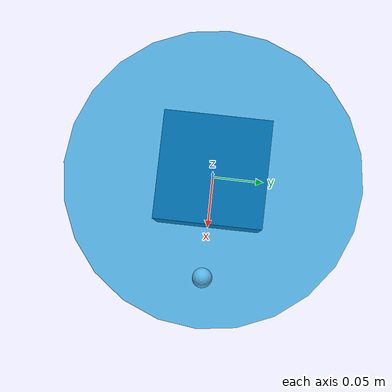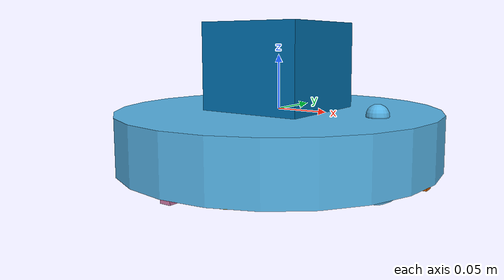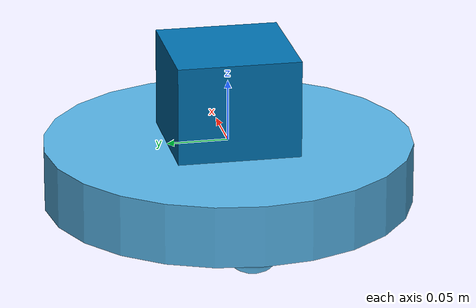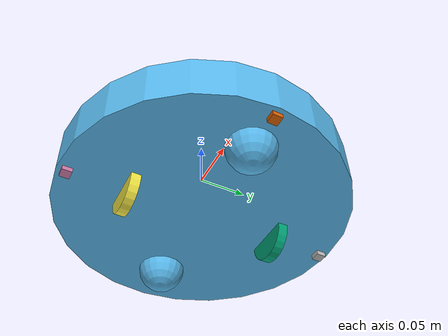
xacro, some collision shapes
<?xml version='1.0'?>

<robot name="fncd_bot" xmlns:xacro="http://www.ros.org/wiki/xacro">
 <xacro:include filename="$(find fall_and_collision_detection)/urdf/bot.gazebo" />
 <link name="base_footprint"></link>

 <joint name="base_footprint_joint" type="fixed">
<origin xyz="0 0 0" rpy="0 0 0" />
<parent link="base_footprint"/>
<child link="base_link" />
</joint>

<link name='base_link'>
<pose>0 0 0.1 0 0 0</pose>

 <inertial>
<mass value="15.0"/>
<origin xyz="0 0 0" rpy="0 0 0"/>
<inertia
ixx="0.1" ixy="0" ixz="0"
iyy="0.1" iyz="0"
izz="0.1"
/>
</inertial>

<collision name='base_collision'>
<origin xyz="0 0 -0.025" rpy="0 0 0"/>
<geometry>
<cylinder radius="0.15" length=".05"/>
</geometry>
</collision>

 <visual name='base_link_visual'>
<origin xyz="0 0 -0.025" rpy="0 0 0"/>
<geometry>
<cylinder radius="0.15" length=".05"/>
 <!--mesh filename = "package://urdf_examples/meshes/wheel.dae"/-->
</geometry>
</visual>

 <collision name='caster_collision'>
<origin xyz="-0.1 0 -0.05" rpy="0 0 0"/>
<geometry>
<sphere radius="0.0245"/>
</geometry>
</collision>

 <visual name='caster_visual'>
<origin xyz="-0.1 0 -0.05" rpy="0 0 0"/>
<geometry>
<sphere radius="0.0245"/>
 <!--mesh filename = "package://urdf_examples/meshes/wheel.dae"/-->
</geometry>
</visual>

<collision name='caster2_collision'>
  <origin xyz="0.1 0 -0.05" rpy="0 0 0"/>
  <geometry>
  <sphere radius="0.0245"/>
  </geometry>
  </collision>

   <visual name='caster2_visual'>
  <origin xyz="0.1 0 -0.05" rpy="0 0 0"/>
  <geometry>
  <sphere radius="0.0245"/>
   <!--mesh filename = "package://urdf_examples/meshes/wheel.dae"/-->
  </geometry>
  </visual>

  <collision name='indicator_collision'>
    <origin xyz="0.1 0 0.001" rpy="0 0 0"/>
    <geometry>
    <sphere radius="0.01"/>
    </geometry>
    </collision>

     <visual name='indicator_visual'>
    <origin xyz="0.1 0 0.001" rpy="0 0 0"/>
    <geometry>
    <sphere radius="0.01"/>
     <!--mesh filename = "package://urdf_examples/meshes/wheel.dae"/-->
    </geometry>
    </visual>

 </link>

 <joint type="continuous" name="left_wheel_joint">
    <origin xyz="0.00 0.08 -0.05" rpy="0 0 0"/>
    <child link="left_wheel"/>
    <parent link="base_link"/>
    <axis xyz="0 1 0" rpy="0 0 0"/>
    <limit effort="10000" velocity="1000"/>
    <dynamics damping="1.0" friction="1.0"/>
  </joint>

  <link name='left_wheel'>
    <inertial>
      <mass value="0.1"/>
      <origin xyz="0 0 0" rpy="0 1.5707 1.5707"/>
      <inertia
          ixx="0.1" ixy="0" ixz="0"
          iyy="0.1" iyz="0"
          izz="0.1"
      />
    </inertial>

    <collision name='collision'>
      <origin xyz="0 0 0" rpy="0 1.5707 1.5707"/>
      <geometry>
        <cylinder radius=".025" length=".01"/>
      </geometry>
    </collision>

    <visual name='left_wheel_visual'>
      <origin xyz="0 0 0" rpy="0 1.5707 1.5707"/>
      <geometry>
        <cylinder radius=".025" length=".01"/>
         <!--mesh filename = "package://urdf_examples/meshes/wheel.dae"/-->
      </geometry>
    </visual>
  </link>

  <joint type="continuous" name="right_wheel_joint">
    <origin xyz="0.00 -0.08 -0.05" rpy="0 0 0"/>
    <child link="right_wheel"/>
    <parent link="base_link"/>
    <axis xyz="0 1 0" rpy="0 0 0"/>
    <limit effort="10000" velocity="1000"/>
    <dynamics damping="1.0" friction="1.0"/>
  </joint>

  <link name='right_wheel'>
    <inertial>
      <mass value="5.0"/>
      <origin xyz="0 0 0" rpy="0 1.5707 1.5707"/>
      <inertia
          ixx="0.1" ixy="0" ixz="0"
          iyy="0.1" iyz="0"
          izz="0.1"
      />
    </inertial>

    <collision name='collision'>
      <origin xyz="0 0 0" rpy="0 1.5707 1.5707"/>
      <geometry>
        <cylinder radius=".025" length=".01"/>
      </geometry>
    </collision>

    <visual name='right_wheel_visual'>
      <origin xyz="0 0 0" rpy="0 1.5707 1.5707"/>
      <geometry>
        <cylinder radius=".025" length=".01"/>
        <!--mesh filename = "package://urdf_examples/meshes/wheel.dae"/-->
    </geometry>
    </visual>
  </link>

  <!-- Lidar -->
  <joint type="fixed" name="scan_joint">
    <origin xyz="0.0 0 0.03" rpy="0 0 0"/>
    <child link="scan_link"/>
    <parent link="base_link"/>
    <axis xyz="0 1 0" rpy="0 0 0"/>
  </joint>

  <link name='scan_link'>
    <inertial>
      <mass value="1e-5"/>
      <origin xyz="0 0 0" rpy="0 0 0"/>
      <inertia
          ixx="1e-6" ixy="0" ixz="0"
          iyy="1e-6" iyz="0"
          izz="1e-6"
      />
    </inertial>

    <collision name='collision'>
      <origin xyz="0 0 0" rpy="0 0 0"/>
      <geometry>
        <box size=".1 .1 .1"/>
      </geometry>
    </collision>

    <visual name='scan_link_visual'>
      <origin xyz="0 0 0" rpy="0 0 0"/>
      <geometry>
        <!--  TODO : use own mesh instead-->
        <mesh filename = "package://bme_gazebo_sensors/meshes/lidar.dae"/>
      </geometry>
    </visual>

  </link>

  <!-- IR sensor 1 -->
  <joint type="fixed" name="ir_front_joint">
    <origin xyz="0.14 0 -0.05" rpy="0 1.56 0"/>
    <child link="base_ir_front"/>
    <parent link="base_link"/>
    <axis xyz="1 0 0" rpy="0 0 0"/>
  </joint>

  <link name="base_ir_front">
    <collision>
      <origin xyz="0 0 0" rpy="0 0 0"/>
      <geometry>
        <box size="0.01 0.01 0.01"/>
      </geometry>
    </collision>
    <visual>
      <origin xyz="0 0 0" rpy="0 0 0"/>
      <geometry>
        <box size="0.01 0.01 0.01"/>
      </geometry>
    </visual>
    <inertial>
      <mass value="1e-5" />
      <origin xyz="0 0 0" rpy="0 0 0"/>
      <inertia ixx="1e-6" ixy="0" ixz="0" iyy="1e-6" iyz="0"      izz="1e-6" />
    </inertial>
  </link>

  <!-- IR sensor 2 -->
  <joint type="fixed" name="ir_left_joint">
    <origin xyz="0.0 -0.14 -0.05" rpy="0 1.56 0"/>
    <child link="base_ir_left"/>
    <parent link="base_link"/>
    <axis xyz="1 0 0" rpy="0 0 0"/>
  </joint>

  <link name="base_ir_left">
    <collision>
      <origin xyz="0 0 0" rpy="0 0 0"/>
      <geometry>
        <box size="0.01 0.01 0.01"/>
      </geometry>
    </collision>
    <visual>
      <origin xyz="0 0 0" rpy="0 0 0"/>
      <geometry>
        <box size="0.01 0.01 0.01"/>
      </geometry>
    </visual>
    <inertial>
      <mass value="1e-5" />
      <origin xyz="0 0 0" rpy="0 0 0"/>
      <inertia ixx="1e-6" ixy="0" ixz="0" iyy="1e-6" iyz="0"      izz="1e-6" />
    </inertial>
  </link>

    <!-- IR sensor 3 -->
  <joint type="fixed" name="ir_right_joint">
    <origin xyz="0.0 0.14 -0.05" rpy="0 1.56 0"/>
    <child link="base_ir_right"/>
    <parent link="base_link"/>
    <axis xyz="1 0 0" rpy="0 0 0"/>
  </joint>

  <link name="base_ir_right">
    <collision>
      <origin xyz="0 0 0" rpy="0 0 0"/>
      <geometry>
        <box size="0.01 0.01 0.01"/>
      </geometry>
    </collision>
    <visual>
      <origin xyz="0 0 0" rpy="0 0 0"/>
      <geometry>
        <box size="0.01 0.01 0.01"/>
      </geometry>
    </visual>
    <inertial>
      <mass value="1e-5" />
      <origin xyz="0 0 0" rpy="0 0 0"/>
      <inertia ixx="1e-6" ixy="0" ixz="0" iyy="1e-6" iyz="0"      izz="1e-6" />
    </inertial>
  </link>
</robot>
